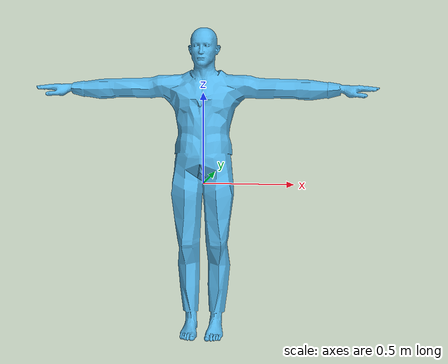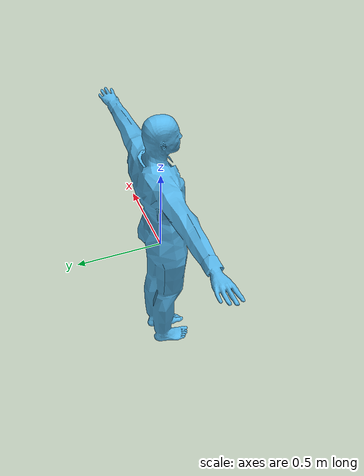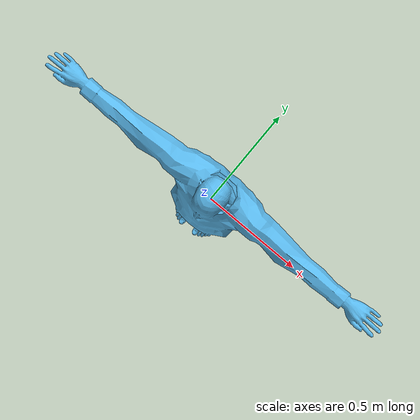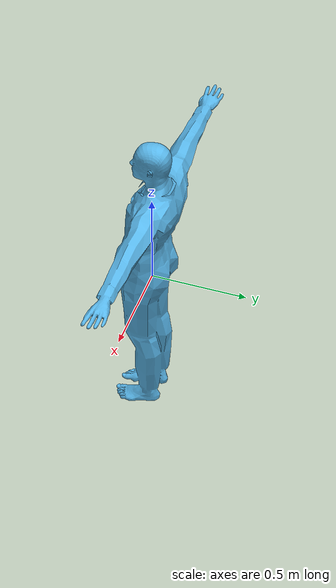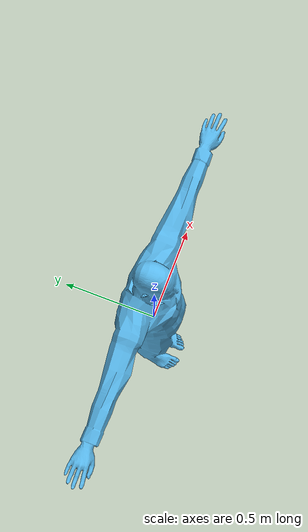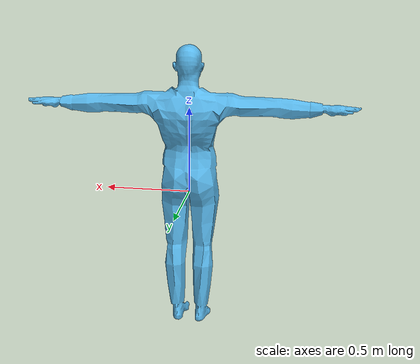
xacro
<?xml version='1.0'?>

<robot name="ball"
    xmlns:xacro="http://www.ros.org/wiki/xacro">
    <xacro:include filename="$(find my_robot)/urdf/ball.gazebo" />
    <!-- root link, on the ground just below the model origin -->
    <link name="base_footprint_ball">
        <visual>
            <origin xyz="0 0 0" rpy="0 0 0" />
            <geometry>
                <box size="0.001 0.001 0.001" />
            </geometry>
        </visual>
    </link>

    <joint name="base_link_joint" type="fixed">
        <origin xyz="0.0 0 0" rpy="0 0 0" />
        <parent link="base_footprint_ball"/>
        <child link="base_link_man" />
    </joint>

    <link name="base_link_man">
        <inertial>
            <mass value="50" />
            <origin xyz="0 0 -1.25" />
            <inertia ixx="50.0" ixy="0.0" ixz="0.0" iyy="50.0" iyz="0.0" izz="50.0" />
        </inertial>
        <visual>
            <geometry>
                <mesh filename="package://my_robot/meshes/walk.dae"/>
            </geometry>
        </visual>
        <collision>
            <origin xyz="0 0 0.0" />
            <geometry>
                <cylinder length="2.15" radius="0.25" />
            </geometry>
        </collision>
    </link>

</robot>
